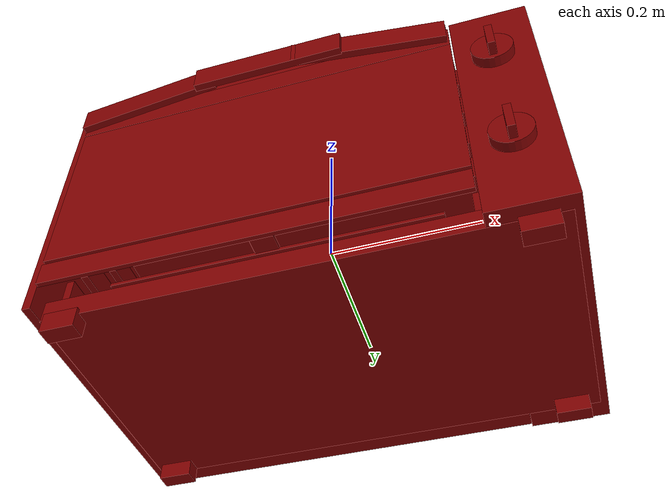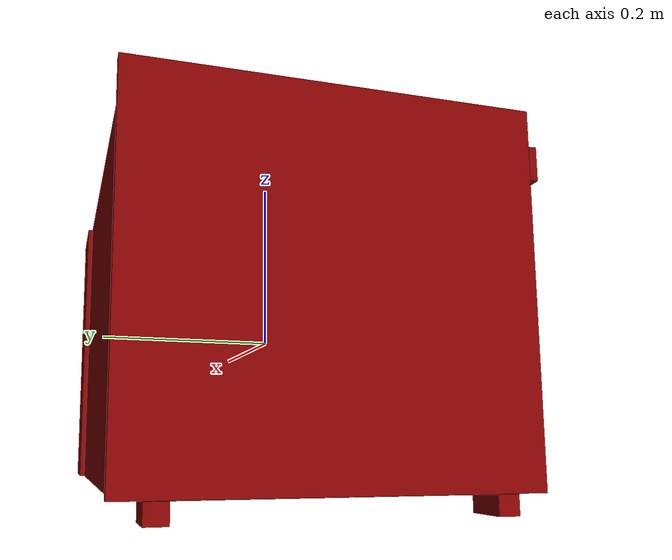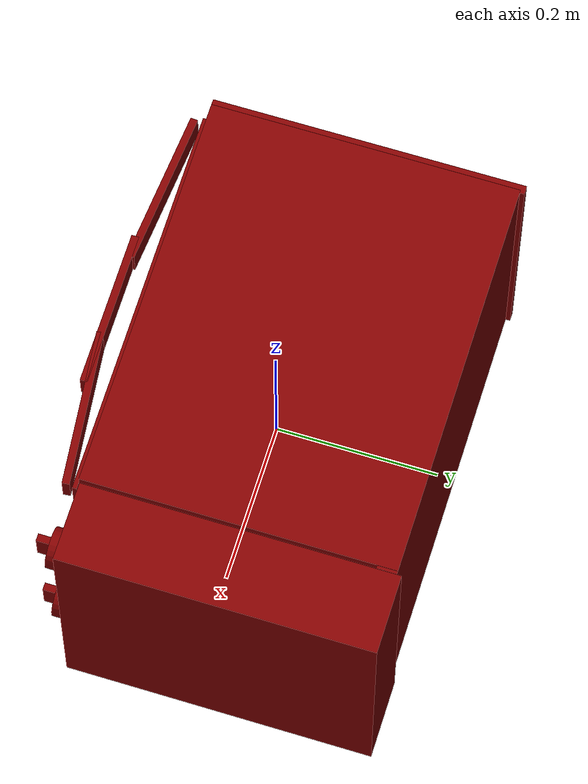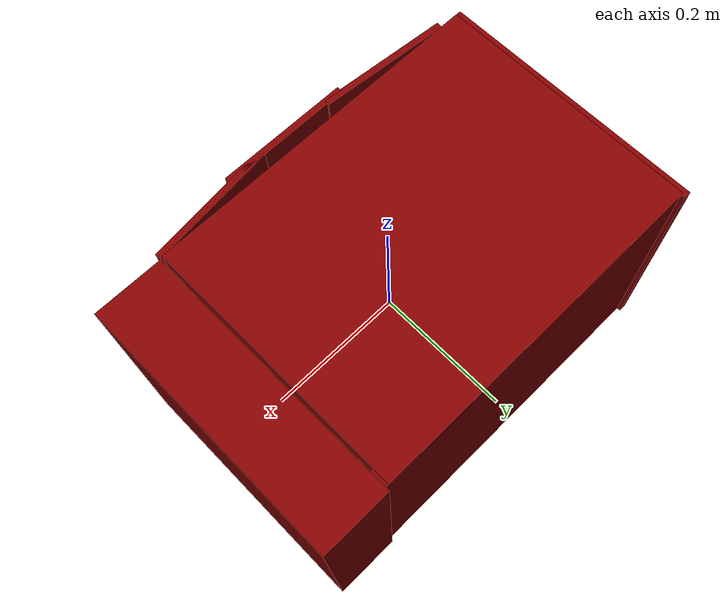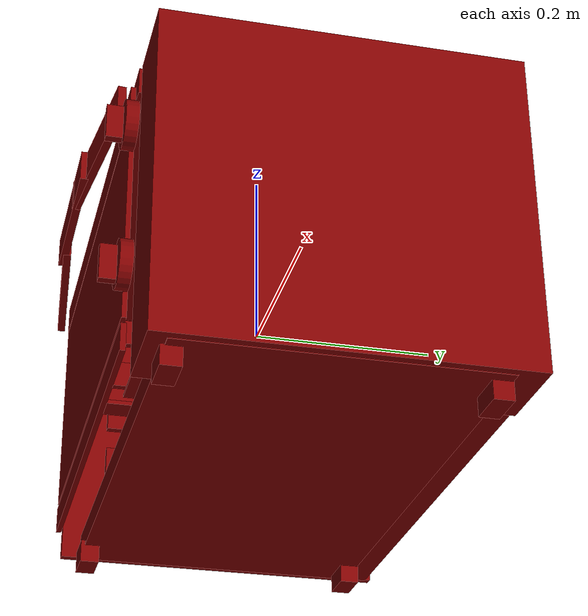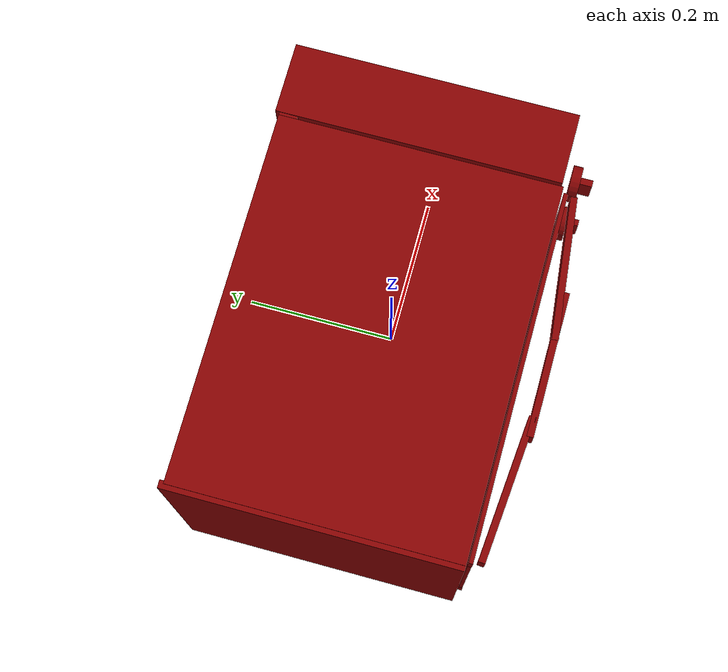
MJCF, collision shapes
<?xml version='1.0' encoding='UTF-8'?>
<mujoco model="model">
  <option timestep="0.002" gravity="0.0 0.0 -9.81"/>
  <compiler angle="radian"/>
  <asset>
    <mesh file="visuals/Body001.obj" name="Body001_vis"/>
    <mesh file="visuals/Door001.obj" name="Door001_vis"/>
    <mesh file="visuals/Door001_Clear.obj" name="Door001_Clear_vis"/>
    <mesh file="visuals/Knob001.obj" name="Knob001_vis"/>
    <mesh file="visuals/Knob002.obj" name="Knob002_vis"/>
    <mesh file="visuals/Shelf001.obj" name="Shelf001_vis"/>
    <mesh file="visuals/Shelf002.obj" name="Shelf002_vis"/>
    <texture file="visuals/T_BC001.png" name="Body001_material" type="2d"/>
    <material name="Body001_material" rgba="1 1 1 1.0" texture="Body001_material" shininess="1" specular="1"/>
    <texture file="visuals/T_BC001.png" name="Door001_material" type="2d"/>
    <material name="Door001_material" rgba="1 1 1 1.0" texture="Door001_material" shininess="0.5838508307933807" specular="0.3103448502657381"/>
    <material name="Door001_Clear_material" rgba="0.008668105117976665 0.008668105117976665 0.008668105117976665 0.75" shininess="0.5" specular="0.3103448502657381"/>
    <texture file="visuals/T_BC001.png" name="Knob001_material" type="2d"/>
    <material name="Knob001_material" rgba="1 1 1 1.0" texture="Knob001_material" shininess="1" specular="1"/>
    <texture file="visuals/T_BC001.png" name="Knob002_material" type="2d"/>
    <material name="Knob002_material" rgba="1 1 1 1.0" texture="Knob002_material" shininess="1" specular="1"/>
    <texture file="visuals/T_BC001.png" name="Shelf001_material" type="2d"/>
    <material name="Shelf001_material" rgba="1 1 1 1.0" texture="Shelf001_material" shininess="15" specular="15"/>
    <texture file="visuals/T_BC001.png" name="Shelf002_material" type="2d"/>
    <material name="Shelf002_material" rgba="1 1 1 1.0" texture="Shelf002_material" shininess="15" specular="15"/>
  </asset>
  <default>
    <default class="visual">
      <geom conaffinity="0" contype="0" group="1" type="mesh"/>
    </default>
    <default class="collision">
      <geom group="0" rgba="0.5 0 0 0.5"/>
    </default>
    <default class="spawn">
      <geom group="0" rgba="1 1 1 0.5" contype="0" conaffinity="0"/>
      <site group="0" rgba="1 1 1 0.5"/>
    </default>
    <default class="region">
      <geom group="1" conaffinity="0" contype="0" rgba="0 1 0 0"/>
    </default>
  </default>
  <worldbody>
    <body>
      <body name="object">
        <geom mesh="Body001_vis" type="mesh" solimp="0.998 0.998 0.001" solref="0.001 1" friction="0.95 0.3 0.1" class="visual" material="Body001_material"/>
        <geom class="collision" type="box" pos="-0.3006901144981384 0.020305940881371498 0.011176440864801407" size="0.005303201265633106 0.193665012717247 0.18023677170276642" quat="1.0 0.0 0.0 0.0" density="1000.0"/>
        <geom class="collision" type="box" pos="0.25721585750579834 0.021541036665439606 0.011369681917130947" size="0.0487583689391613 0.19242991507053375 0.18043002486228943" quat="1.0 0.0 0.0 0.0" density="1000.0"/>
        <geom class="collision" type="box" pos="-0.04748456925153732 0.01741734705865383 0.17652897536754608" size="0.25154298543930054 0.19081459939479828 0.015270750969648361" quat="1.0 0.0 0.0 0.0" density="1000.0"/>
        <geom class="collision" type="box" pos="0.0001329313963651657 0.016298826783895493 -0.1561373472213745" size="0.29652151465415955 0.16738273203372955 0.013958488591015339" quat="1.0 0.0 0.0 0.0" density="1000.0"/>
        <geom class="collision" type="box" pos="-0.045280370861291885 0.19593051075935364 0.011176437139511108" size="0.253353089094162 0.012301459908485413 0.18023677170276642" quat="1.0 0.0 0.0 0.0" density="1000.0"/>
        <geom class="collision" type="box" pos="-0.26818713545799255 -0.1449253261089325 -0.17750820517539978" size="0.021052878350019455 0.01082539465278387 0.012865325435996056" quat="7.549790126404332e-08 -0.0 -1.0 -0.0" density="1000.0"/>
        <geom class="collision" type="box" pos="-0.26818713545799255 0.17321884632110596 -0.17750820517539978" size="0.021052878350019455 0.01082539465278387 0.012865325435996056" quat="7.549790126404332e-08 -0.0 -1.0 -0.0" density="1000.0"/>
        <geom class="collision" type="box" pos="0.26205214858055115 -0.1449253261089325 -0.17750820517539978" size="0.021052878350019455 0.01082539465278387 0.012865325435996056" quat="7.549790126404332e-08 -0.0 -1.0 -0.0" density="1000.0"/>
        <geom class="collision" type="box" pos="0.26205214858055115 0.17321884632110596 -0.17750820517539978" size="0.021052878350019455 0.01082539465278387 0.012865325435996056" quat="7.549790126404332e-08 -0.0 -1.0 -0.0" density="1000.0"/>
        <geom class="collision" type="box" pos="-0.2908344864845276 0.015949463471770287 -0.10381443053483963" size="0.005254596471786499 0.14185386896133423 0.016650047153234482" quat="7.549790126404332e-08 -0.0 -1.0 -0.0" density="1000.0"/>
        <geom class="collision" type="box" pos="-0.2908344864845276 0.015949463471770287 -0.04270268604159355" size="0.005254596471786499 0.14185386896133423 0.016650047153234482" quat="7.549790126404332e-08 -0.0 -1.0 -0.0" density="1000.0"/>
        <geom class="collision" type="box" pos="-0.2908344864845276 0.015949463471770287 0.017321661114692688" size="0.005254596471786499 0.14185386896133423 0.016650047153234482" quat="7.549790126404332e-08 -0.0 -1.0 -0.0" density="1000.0"/>
        <geom class="collision" type="box" pos="-0.2908344864845276 0.015949463471770287 0.07778096199035645" size="0.005254596471786499 0.14185386896133423 0.016650047153234482" quat="7.549790126404332e-08 -0.0 -1.0 -0.0" density="1000.0"/>
        <geom class="collision" type="box" pos="-0.2908344864845276 0.015949463471770287 0.13867522776126862" size="0.005254596471786499 0.14185386896133423 0.016650047153234482" quat="7.549790126404332e-08 -0.0 -1.0 -0.0" density="1000.0"/>
        <geom class="collision" type="box" pos="0.20451559126377106 0.015949463471770287 -0.10250955075025558" size="0.005254596471786499 0.14185386896133423 0.016650047153234482" quat="7.549790126404332e-08 -0.0 -1.0 -0.0" density="1000.0"/>
        <geom class="collision" type="box" pos="0.20451559126377106 0.015949463471770287 -0.041397809982299805" size="0.005254596471786499 0.14185386896133423 0.016650047153234482" quat="7.549790126404332e-08 -0.0 -1.0 -0.0" density="1000.0"/>
        <geom class="collision" type="box" pos="0.20451559126377106 0.015949463471770287 0.018626539036631584" size="0.005254596471786499 0.14185386896133423 0.016650047153234482" quat="7.549790126404332e-08 -0.0 -1.0 -0.0" density="1000.0"/>
        <geom class="collision" type="box" pos="0.20451559126377106 0.015949463471770287 0.07908584177494049" size="0.005254596471786499 0.14185386896133423 0.016650047153234482" quat="7.549790126404332e-08 -0.0 -1.0 -0.0" density="1000.0"/>
        <geom class="collision" type="box" pos="0.19660936295986176 0.015949463471770287 0.13998010754585266" size="0.016755200922489166 0.14185386896133423 0.016650047153234482" quat="7.549790126404332e-08 -0.0 -1.0 -0.0" density="1000.0"/>
        <body name="Door001">
          <joint axis="1.0 0.0 0.0" pos="-0.036919038742780685 -0.1825444996356964 -0.1560133546590805" limited="true" name="Door001_joint" range="0.0 1.5707963267948966" type="hinge" damping="1" frictionloss="1" armature=".01" stiffness="1" springref="-1"/>
          <geom mesh="Door001_vis" type="mesh" solimp="0.998 0.998 0.001" solref="0.001 1" friction="0.95 0.3 0.1" class="visual" material="Door001_material"/>
          <geom class="collision" type="box" pos="-0.04241021350026131 -0.17881794273853302 -0.12593680620193481" size="0.24888575077056885 0.0029504485428333282 0.014825603924691677" quat="1.0 0.0 0.0 0.0" density="1000.0"/>
          <geom class="collision" type="box" pos="-0.04241019859910011 -0.17902249097824097 0.1481514722108841" size="0.2488858699798584 0.002745889127254486 0.01684574782848358" quat="1.0 0.0 0.0 0.0" density="1000.0"/>
          <geom class="collision" type="box" pos="-0.02200915664434433 -0.21093463897705078 0.14812467992305756" size="0.09729496389627457 0.004534127656370401 0.01736615039408207" quat="1.0 0.0 0.0 0.0" density="1000.0"/>
          <geom class="collision" type="box" pos="-0.1898321509361267 -0.19982054829597473 0.14812467992305756" size="0.09729483723640442 0.004534127656370401 0.01736615039408207" quat="0.9990631937980652 0.0 0.0 -0.04327472671866417" density="1000.0"/>
          <geom class="collision" type="box" pos="0.10747018456459045 -0.20093196630477905 0.14812467992305756" size="0.09729483723640442 0.004534127656370401 0.01736615039408207" quat="0.9985049366950989 0.0 0.0 0.05466189607977867" density="1000.0"/>
          <body name="Door001_Clear">
            <geom mesh="Door001_Clear_vis" type="mesh" solimp="0.998 0.998 0.001" solref="0.001 1" friction="0.95 0.3 0.1" class="visual" material="Door001_Clear_material"/>
            <geom class="collision" type="box" pos="-0.04241021350026131 -0.17883145809173584 0.014331731013953686" size="0.2488851249217987 0.0025548848789185286 0.11963823437690735" quat="1.0 0.0 0.0 0.0" density="1000.0"/>
          </body>
        </body>
        <body name="Knob001">
          <joint axis="0.0 1.0 0.0" pos="0.2540435194969177 -0.19719865918159485 0.08363556861877441" limited="true" name="Knob001_joint" range="0.0 4.799655442984406" type="hinge" damping="0.05" armature="0.001"/>
          <geom mesh="Knob001_vis" type="mesh" solimp="0.998 0.998 0.001" solref="0.001 1" friction="0.95 0.3 0.1" class="visual" material="Knob001_material"/>
          <geom class="collision" type="cylinder" pos="0.2540435194969177 -0.18833047151565552 0.08363556861877441" size="0.02517274022102356 0.006519017741084099" quat="0.7071067094802856 -0.70710688829422 0.0 0.0" density="1000.0"/>
          <geom class="collision" type="box" pos="0.2538634240627289 -0.20284461975097656 0.08356726914644241" size="0.0045868270099163055 0.008810611441731453 0.018689638003706932" quat="1.0 0.0 0.0 0.0" density="1000.0"/>
        </body>
        <body name="Knob002">
          <joint axis="0.0 1.0 0.0" pos="0.2540435194969177 -0.19719865918159485 -0.07517022639513016" limited="true" name="Knob002_joint" range="0.0 3.9269908169872414" type="hinge" damping="0.05" armature="0.001"/>
          <geom mesh="Knob002_vis" type="mesh" solimp="0.998 0.998 0.001" solref="0.001 1" friction="0.95 0.3 0.1" class="visual" material="Knob002_material"/>
          <geom class="collision" type="cylinder" pos="0.2540435194969177 -0.18833047151565552 -0.07517023384571075" size="0.02489914372563362 0.006448163650929928" quat="0.7071067094802856 -0.70710688829422 0.0 0.0" density="1000.0"/>
          <geom class="collision" type="box" pos="0.2538634240627289 -0.20284461975097656 -0.07546905428171158" size="0.0045868270099163055 0.008810611441731453 0.018689638003706932" quat="1.0 0.0 0.0 0.0" density="1000.0"/>
        </body>
        <body name="Shelf001">
          <joint axis="0.0 -1.0 0.0" pos="2.9802322387695312e-08 0.0023135319352149963 2.3558735847473145e-05" limited="true" name="Shelf001_joint" range="0.0 0.25" type="slide" damping="1" frictionloss="1" armature=".01" stiffness="0.05"/>
          <geom mesh="Shelf001_vis" type="mesh" solimp="0.998 0.998 0.001" solref="0.001 1" friction="0.95 0.3 0.1" class="visual" material="Shelf001_material"/>
          <geom class="collision" type="box" pos="-0.043227359652519226 0.03556651994585991 0.04847293719649315" size="0.2447032779455185 0.1431661993265152 0.002236340194940567" quat="1.0 0.0 0.0 0.0" density="1000.0"/>
        </body>
        <body name="Shelf002">
          <joint axis="0.0 -1.0 0.0" pos="2.9802322387695312e-08 0.0023135319352149963 2.3558735847473145e-05" limited="true" name="Shelf002_joint" range="0.0 0.25" type="slide" damping="1" frictionloss="1" armature=".01" stiffness="0.05"/>
          <geom mesh="Shelf002_vis" type="mesh" solimp="0.998 0.998 0.001" solref="0.001 1" friction="0.95 0.3 0.1" class="visual" material="Shelf002_material"/>
          <geom class="collision" type="box" pos="-0.04181358590722084 0.04642156884074211 -0.07554053515195847" size="0.24384048581123352 0.13231125473976135 0.002236341591924429" quat="1.0 0.0 0.0 0.0" density="1000.0"/>
          <geom class="collision" type="box" pos="-0.04592083394527435 -0.12343715876340866 -0.08305053412914276" size="0.014829006977379322 0.03774901106953621 0.0022363432217389345" quat="1.0 0.0 0.0 0.0" density="1000.0"/>
          <geom class="collision" type="box" pos="-0.04181359335780144 -0.08564943820238113 -0.07897063344717026" size="0.21091271936893463 0.002236359054222703 0.00481604877859354" quat="0.968393087387085 -0.2494291216135025 0.0 0.0" density="1000.0"/>
          <geom class="collision" type="box" pos="-0.04181358590722084 -0.09690353274345398 -0.0852491557598114" size="0.2064656764268875 0.008938395418226719 0.002236343687400222" quat="1.0 0.0 0.0 0.0" density="1000.0"/>
        </body>
        <geom class="region" name="reg_int" type="box" pos="-0.04340109974145889 0.02033933997154236 0.020381920039653778" size="0.2520759031176567 0.18598878383636475 0.16058702021837234"/>
        <geom class="region" name="reg_main" type="box" pos="0.0 0.016101330518722534 0.0" size="0.3059932589530945 0.19786971807479858 0.1918107271194458"/>
      </body>
    </body>
  </worldbody>
  <actuator>
    <motor name="Door001_joint_actuator" joint="Door001_joint" gear="30"/>
    <motor name="Knob001_joint_actuator" joint="Knob001_joint" gear="10"/>
    <motor name="Knob002_joint_actuator" joint="Knob002_joint" gear="10"/>
    <motor name="Shelf001_joint_actuator" joint="Shelf001_joint" gear="10"/>
    <motor name="Shelf002_joint_actuator" joint="Shelf002_joint" gear="10"/>
  </actuator>
</mujoco>
